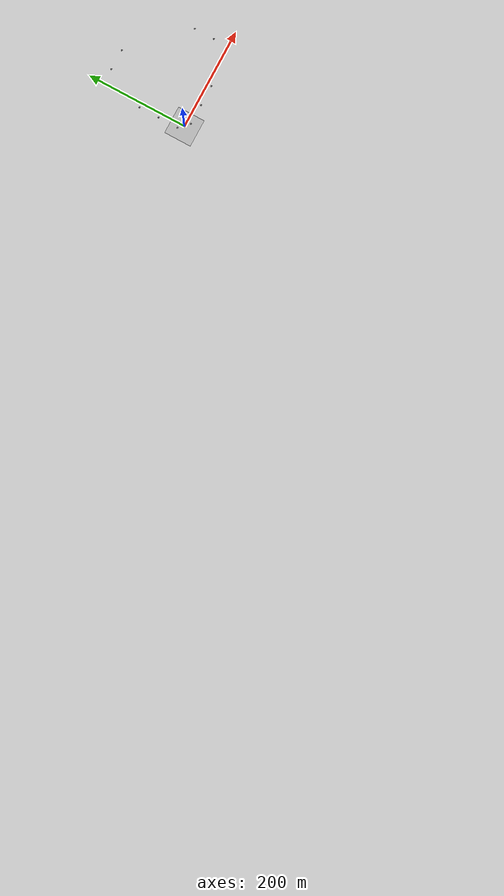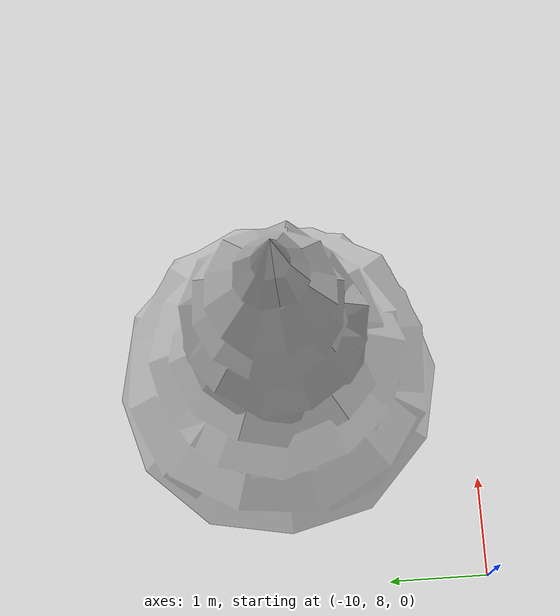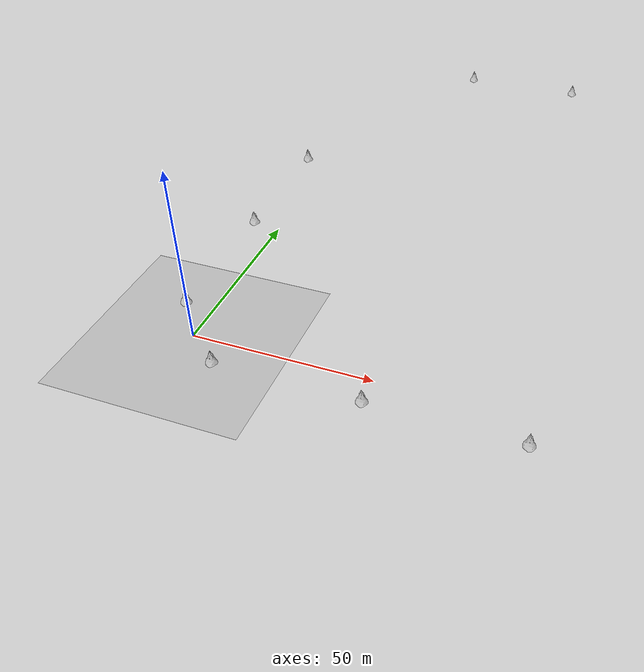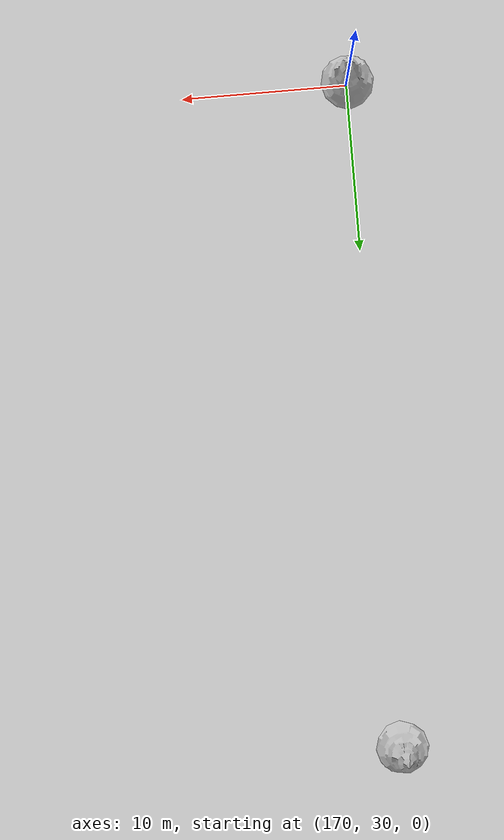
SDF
<sdf version="1.5">
 <world name="default">
  <plugin name="mrs_gazebo_static_transform_republisher_plugin" filename="libMrsGazeboCommonResources_StaticTransformRepublisher.so"/>
  <spherical_coordinates>
   <surface_model>EARTH_WGS84</surface_model>
   <latitude_deg>47.397743</latitude_deg>
   <longitude_deg>8.545594</longitude_deg>
   <elevation>0.0</elevation>
   <heading_deg>0</heading_deg>
  </spherical_coordinates>
  <physics name="default_physics" default="0" type="ode">
   <gravity>0 0 -9.8066</gravity>
   <ode>
    <solver>
     <type>quick</type>
     <iters>10</iters>
     <sor>1.3</sor>
     <use_dynamic_moi_rescaling>0</use_dynamic_moi_rescaling>
    </solver>
    <constraints>
     <cfm>0</cfm>
     <erp>0.2</erp>
     <contact_max_correcting_vel>1000</contact_max_correcting_vel>
     <contact_surface_layer>0.001</contact_surface_layer>
    </constraints>
   </ode>
   <max_step_size>0.004</max_step_size>
   <real_time_factor>1</real_time_factor>
   <real_time_update_rate>250</real_time_update_rate>
   <magnetic_field>6.0e-06 2.3e-05 -4.2e-05</magnetic_field>
  </physics>
  <scene><shadows>false</shadows></scene>
  <light name="sun" type="directional">
   <pose>0 0 1000 0.4 0.2 0</pose>
   <diffuse>1 1 1 1</diffuse>
   <specular>0.6 0.6 0.6 1</specular>
   <direction>0.1 0.1 -0.9</direction>
   <attenuation>
    <range>20</range>
    <constant>0.5</constant>
    <linear>0.01</linear>
    <quadratic>0.001</quadratic>
   </attenuation>
  </light>
  <model name="ground_plane">
   <static>true</static>
   <link name="link">
    <collision name="collision">
     <geometry><plane><normal>0 0 1</normal><size>250 250</size></plane></geometry>
     <surface><contact><ode><min_depth>0.01</min_depth><max_vel>0.0</max_vel></ode></contact></surface>
    </collision>
    <visual name="grass">
     <cast_shadows>false</cast_shadows>
     <geometry><mesh><uri>file://grass_plane/meshes/grass_plane.dae</uri></mesh></geometry>
    </visual>
   </link>
  </model>
  <model name="the_void">
   <static>1</static>
   <link name="link">
    <pose>0 0 0.1 0 -0 0</pose>
    <visual name="the_void">
     <pose>0 0 2 0 -0 0</pose>
     <geometry><sphere><radius>0.25</radius></sphere></geometry>
     <material>
      <script><uri>file://media/materials/scripts/Gazebo.material</uri><name>Gazebo/Black</name></script>
     </material>
    </visual>
   </link>
   <pose>-1000 -1000 0 0 0 0</pose>
  </model>
  <model name="talhao">
   <static>1</static>
   <pose>50 50 0.03 0 0 0</pose>
   <link name="link">
    <visual name="visual">
     <cast_shadows>0</cast_shadows>
     <geometry><plane><normal>0 0 1</normal><size>100 100</size></plane></geometry>
     <material>
      <script>
       <uri>model://mud_box/materials/scripts</uri>
       <uri>model://mud_box/materials/textures</uri>
       <name>vrc/mud</name>
      </script>
     </material>
    </visual>
   </link>
  </model>
  <include><uri>model://pine_tree</uri><name>tree_s1</name><pose>10 -8 0 0 0 0</pose></include>
  <include><uri>model://pine_tree</uri><name>tree_s3</name><pose>50 -8 0 0 0 0</pose></include>
  <include><uri>model://pine_tree</uri><name>tree_s5</name><pose>90 -8 0 0 0 0</pose></include>
  <include><uri>model://pine_tree</uri><name>tree_n2</name><pose>30 170 0 0 0 0</pose></include>
  <include><uri>model://pine_tree</uri><name>tree_n4</name><pose>70 170 0 0 0 0</pose></include>
  <include><uri>model://pine_tree</uri><name>tree_w1</name><pose>-8 10 0 0 0 0</pose></include>
  <include><uri>model://pine_tree</uri><name>tree_w3</name><pose>-8 50 0 0 0 0</pose></include>
  <include><uri>model://pine_tree</uri><name>tree_w5</name><pose>-8 90 0 0 0 0</pose></include>
  <include><uri>model://pine_tree</uri><name>tree_e2</name><pose>170 30 0 0 0 0</pose></include>
  <include><uri>model://pine_tree</uri><name>tree_e4</name><pose>170 70 0 0 0 0</pose></include>
  <plugin name="mrs_gazebo_rviz_cam_synchronizer" filename="libMrsGazeboCommonResources_RvizCameraSynchronizer.so">
   <target_frame_id>gazebo_user_camera</target_frame_id>
   <world_origin_frame_id>uav1/gps_origin</world_origin_frame_id>
   <frame_to_follow>uav1</frame_to_follow>
  </plugin>
 </world>
</sdf>

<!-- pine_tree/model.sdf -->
<sdf version="1.6">
  <model name="pine_tree">
    <static>true</static>
    <link name="link">
      <collision name="collision">
        <geometry>
          <mesh>
            <uri>file://isr-testbed/pine_tree/meshes/pine_tree.dae</uri>
          </mesh>
        </geometry>
      </collision>
      <visual name="branch">
        <geometry>
          <mesh>
            <uri>file://isr-testbed/pine_tree/meshes/pine_tree.dae</uri>
            <submesh>
              <name>Branch</name>
            </submesh>
          </mesh>
        </geometry>
        <material>
          <script>
            <uri>file://isr-testbed/pine_tree/materials/scripts/</uri>
            <uri>file://isr-testbed/pine_tree/materials/textures/</uri>
            <name>PineTree/Branch</name>
          </script>
        </material>
      </visual>
      <visual name="bark">
        <geometry>
          <mesh>
            <uri>file://isr-testbed/pine_tree/meshes/pine_tree.dae</uri>
            <submesh>
              <name>Bark</name>
            </submesh>
          </mesh>
        </geometry>
        <material>
          <script>
            <uri>file://isr-testbed/pine_tree/materials/scripts/</uri>
            <uri>file://isr-testbed/pine_tree/materials/textures/</uri>
            <name>PineTree/Bark</name>
          </script>
        </material>
      </visual>
    </link>
  </model>
</sdf>
